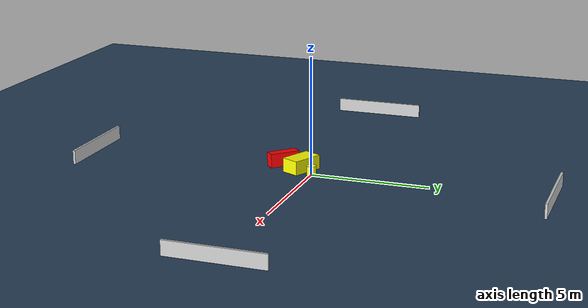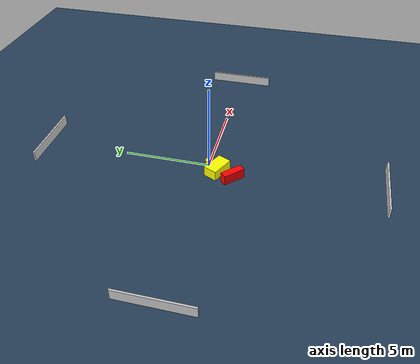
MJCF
<?xml version="1.0" ?>
<mujoco model="generated_environment">
  <option timestep="0.01" integrator="RK4" cone="elliptic"/>
  <default>
    <geom density="1"/>
  </default>
  <asset>
    <texture builtin="gradient" height="3072" name="skybox" rgb1="0.3 0.5 0.7" rgb2="0 0 0" type="skybox" width="512"/>
    <texture builtin="checker" height="300" name="groundplane" rgb1="0.2 0.3 0.4" rgb2="0.1 0.2 0.3" type="2d" width="300"/>
    <material name="groundplane" reflectance="0.2" texrepeat="5 5" texture="groundplane"/>
  </asset>
  <worldbody>
    <light dir="0 0 -1" directional="true" pos="0 0 1.5"/>
    <geom condim="3" friction="0.5 0.005 0.001" material="groundplane" name="floor" pos="0 0 0" size="0 0 0.05" type="plane"/>
    <body name="walls">
      <geom name="wall_1" condim="4" pos="-10.0 0.0 0.3" rgba="0.800000011920929 0.800000011920929 0.800000011920929 1.0" size="0.05 2.0 0.3" type="box"/>
      <geom name="wall_2" condim="4" pos="10.0 0.0 0.3" rgba="0.800000011920929 0.800000011920929 0.800000011920929 1.0" size="0.05 2.0 0.3" type="box"/>
      <geom name="wall_3" condim="4" pos="0.0 -10.0 0.3" rgba="0.800000011920929 0.800000011920929 0.800000011920929 1.0" size="2.0 0.05 0.3" type="box"/>
      <geom name="wall_4" condim="4" pos="0.0 10.0 0.3" rgba="0.800000011920929 0.800000011920929 0.800000011920929 1.0" size="2.0 0.05 0.3" type="box"/>
    </body>
    <body name="robot">
      <joint name="joint_x" type="slide" pos="0 0 0" axis="1 0 0"/>
      <joint name="joint_y" type="slide" pos="0 0 0" axis="0 1 0"/>
      <geom name="robot" type="cylinder" pos="0.0 0.0 0.2" size="0.2 0.2 0.0" mass="5.0" friction="1.0 0.005 0.0001" condim="4" rgba="1.0 1.0 0.0 1.0"/>
    </body>
    <body name="obstacle_1_movable">
      <geom name="obstacle_1_movable" condim="4" pos="-0.4633423571097269 -0.6054685310453674 0.3" euler="0 0 64.29843990771793" friction="0.0 0.005 0.001" rgba="1.0 1.0 0.0 1.0" size="0.40049854908698 0.6889797977130572 0.3" type="box" mass="0.1"/>
      <joint type="free"/>
    </body>
    <body name="obstacle_2_static">
      <geom name="obstacle_2_static" condim="4" pos="-0.8821122054408113 -1.5725942252006786 0.3" euler="0 0 45.43367235059708" friction="0.0 0.005 0.001" rgba="1.0 0.0 0.0 1.0" size="0.20842180509780905 0.6515332608917797 0.3" type="box"/>
    </body>
  </worldbody>
  <actuator>
    <motor name="actuator_x" joint="joint_x" gear="1" ctrlrange="-1 1"/>
    <motor name="actuator_y" joint="joint_y" gear="1" ctrlrange="-1 1"/>
  </actuator>
</mujoco>
